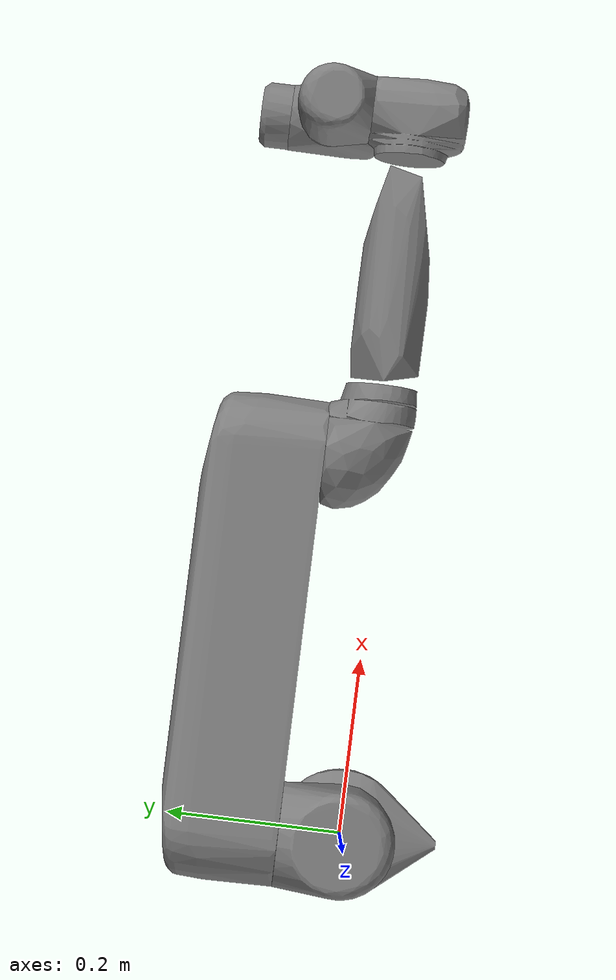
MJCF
<mujoco model="ur5">
  <compiler angle="radian" meshdir="../meshes/ur5/"/>
  <option timestep="0.001" gravity="0 0 -9.81" integrator="implicitfast" cone="elliptic" solver="Newton" iterations="200" tolerance="1e-6"/>
  <asset>
    <mesh name="base" file="base.stl"/>
    <mesh name="shoulder" file="shoulder.stl"/>
    <mesh name="upperarm" file="upperarm.stl"/>
    <mesh name="forearm" file="forearm.stl"/>
    <mesh name="wrist1" file="wrist1.stl"/>
    <mesh name="wrist2" file="wrist2.stl"/>
    <mesh name="wrist3" file="wrist3.stl"/>
  </asset>

  <worldbody>
    <geom type="mesh" mesh="base"/>
    <body name="shoulder_link" pos="0 0 0.089159">
      <inertial pos="0 0 0" mass="3.7" diaginertia="0.0102675 0.0102675 0.00666"/>
      <joint name="shoulder_pan_joint" pos="0 0 0" axis="0 0 1" range="-6.28319 6.28319" actuatorfrcrange="-150 150"/>
      <geom type="mesh" mesh="shoulder"/>
      <body name="upper_arm_link" pos="0 0.13585 0" quat="0.707107 0 0.707107 0">
        <inertial pos="0 0 0.28" mass="8.393" diaginertia="0.226891 0.226891 0.0151074"/>
        <joint name="shoulder_lift_joint" pos="0 0 0" axis="0 1 0" range="-6.28319 6.28319" actuatorfrcrange="-150 150"/>
        <geom type="mesh" mesh="upperarm"/>
        <body name="forearm_link" pos="0 -0.1197 0.425">
          <inertial pos="0 0 0.25" mass="2.275" diaginertia="0.0494433 0.0494433 0.004095"/>
          <joint name="elbow_joint" pos="0 0 0" axis="0 1 0" range="-3.14159 3.14159" actuatorfrcrange="-150 150"/>
          <geom type="mesh" mesh="forearm"/>
          <body name="wrist_1_link" pos="0 0 0.39225" quat="0.707107 0 0.707107 0">
            <inertial pos="0 0 0" quat="0.5 0.5 -0.5 0.5" mass="1.219" diaginertia="0.21942 0.111173 0.111173"/>
            <joint name="wrist_1_joint" pos="0 0 0" axis="0 1 0" range="-6.28319 6.28319" actuatorfrcrange="-28 28"/>
            <geom type="mesh" mesh="wrist1"/>
            <body name="wrist_2_link" pos="0 0.093 0">
              <inertial pos="0 0 0" quat="0.5 0.5 -0.5 0.5" mass="1.219" diaginertia="0.21942 0.111173 0.111173"/>
              <joint name="wrist_2_joint" pos="0 0 0" axis="0 0 1" range="-6.28319 6.28319" actuatorfrcrange="-28 28"/>
              <geom type="mesh" mesh="wrist2"/>
              <body name="wrist_3_link" pos="0 0 0.09465">
                <inertial pos="0 0 0" quat="0.5 0.5 -0.5 0.5" mass="0.1879" diaginertia="0.033822 0.0171365 0.0171365"/>
                <joint name="wrist_3_joint" pos="0 0 0" axis="0 1 0" range="-6.28319 6.28319" actuatorfrcrange="-28 28"/>
                <geom type="mesh" mesh="wrist3"/>
                <geom size="0.005 0.005 0.005" pos="0 0.0723 0" quat="0.707107 0 0 0.707107" type="box"/>
              </body>
            </body>
          </body>
        </body>
      </body>
    </body>
  </worldbody>
</mujoco>
